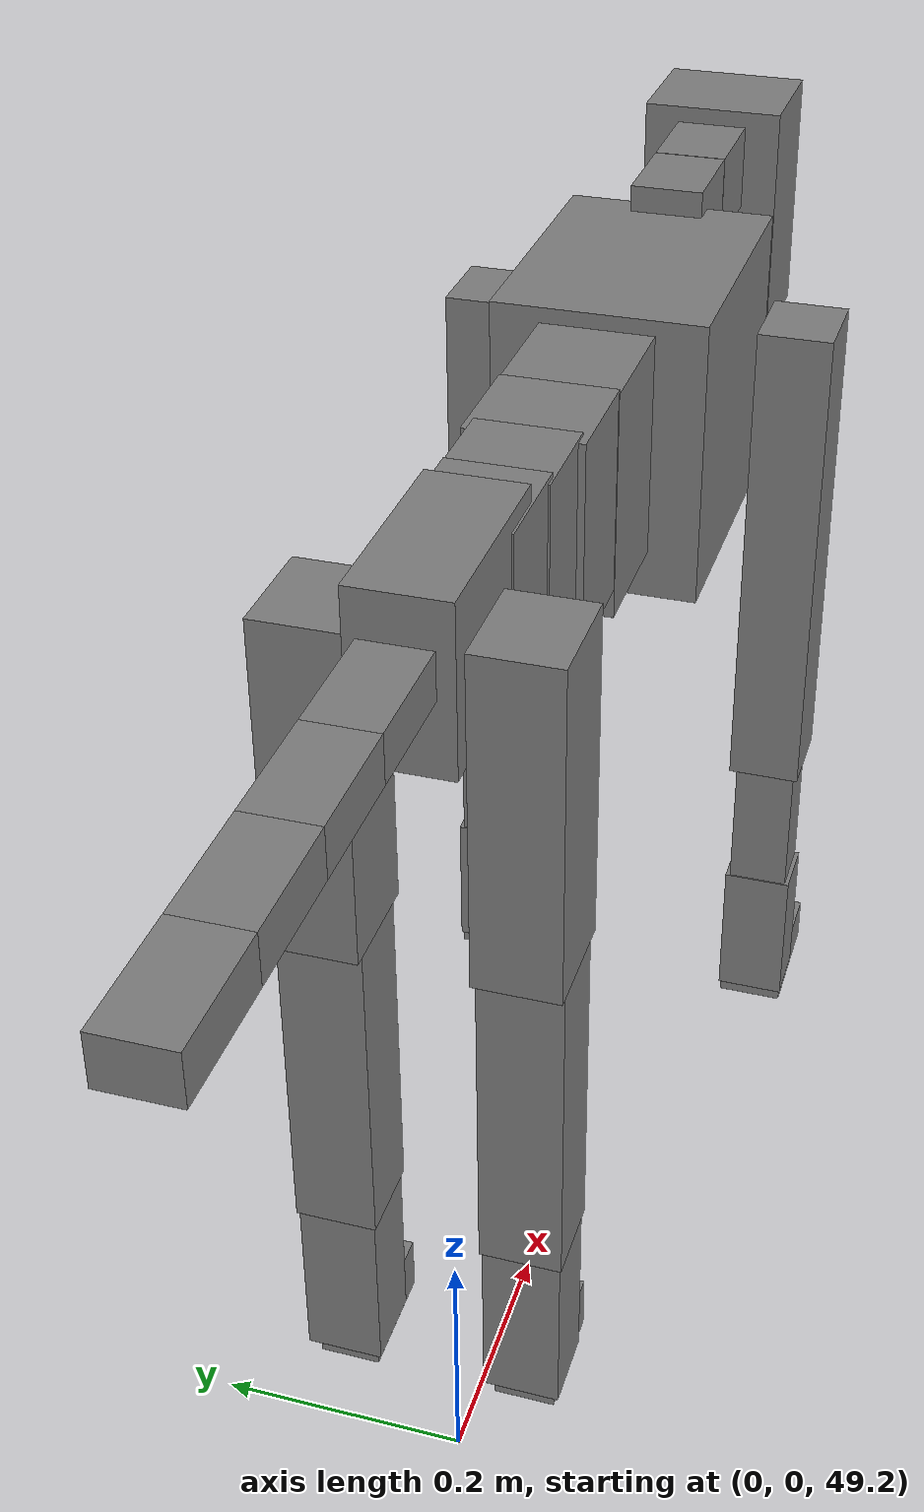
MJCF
<mujoco model="dog">

    <default>
        <joint armature="0.02" stiffness="1" damping="0.2" limited="true"/>
        <geom condim="3" friction="1 0.05 0.05" margin="0.01"/>
        <motor ctrllimited="true" ctrlrange="-1.0 1.0" forcelimited="true" gear="50"/>
    </default>

    <compiler inertiafromgeom="true" angle="radian"/>

    <option timestep="0.016" iterations="50" tolerance="1e-10" solver="Newton" jacobian="dense" cone="pyramidal"/>

    <size nconmax="20000" njmax="60000" nstack="5000000"/>
    <visual>
        <map force="0.1" zfar="30"/>
        <rgba haze="0.15 0.25 0.35 1"/>
        <quality shadowsize="2048"/>
        <global offwidth="800" offheight="800"/>
    </visual>

    <asset>
        <texture type="skybox" builtin="gradient" rgb1="0.3 0.5 0.7" rgb2="0 0 0" width="512" height="512"/>
        <texture name="texplane" type="2d" builtin="checker" rgb1=".2 .3 .4" rgb2=".1 0.15 0.2" width="512" height="512"
                 mark="cross" markrgb=".8 .8 .8"/>
        <texture name="texgeom" type="cube" builtin="flat" mark="cross" width="127" height="1278" rgb1="0.8 0.6 0.4"
                 rgb2="0.8 0.6 0.4" markrgb="1 1 1" random="0.01"/>

        <material name="matplane" reflectance="0.3" texture="texplane" texrepeat="1 1" texuniform="true"/>
        <material name="matgeom" texture="texgeom" texuniform="true" rgba="0.8 0.6 .4 1"/>
    </asset>

    <worldbody>
        <geom name="floor" pos="0 0 0" size="0 0 .25" type="plane" material="matplane" condim="3"/>

        <light directional="false" diffuse=".2 .2 .2" specular="0 0 0" pos="0 0 5" dir="0 0 -1" castshadow="false"/>
        <light mode="targetbodycom" target="torso" directional="false" diffuse=".8 .8 .8" specular="0.3 0.3 0.3"
               pos="0 0 4.0" dir="0 0 -1"/>

        <body name="root" pos="0 0 50">
            <freejoint name="root_1"/>
            <geom type="box" pos="0 0 -0.02" size="0.0774  0.0358  0.063" density="2030"/>

            <body name="spine1" pos="0.054 0 0">
                <joint name="spine1_y" axis="0 1 0" range="0 0.7" limited="true"/>
                <geom type="box" pos="0.02375 0 -0.03" size="0.04375  0.0375  0.05985" density="2030"/>

                <body name="spine2" pos="0.0612 0 0">
                    <joint name="spine2_y" axis="0 1 0" range="-0.15 0.15" limited="true"/>
                    <geom type="box" pos="0.03555  0  -0.04" size="0.04055  0.039  0.06615" density="2030"/>

                    <body name="spine3" pos="0.0730 0 0">
                        <joint name="spine3_y" axis="0 1 0" range="-0.15 0.15" limited="true"/>
                        <geom type="box" pos="0.03555  0  -0.057" size="0.04555  0.0445  0.081" density="2030"/>

                        <body name="spine4" pos="0.0780 0 0">
                            <joint name="spine4_y" axis="0 1 0" range="-0.15 0.15" limited="true"/>
                            <geom type="box" pos="0.05265  0  -0.07" size="0.05265  0.045  0.09135" density="2030"/>

                            <body name="torso" pos="0.1082 0 0">
                                <joint name="torso_y" axis="0 1 0" range="-0.15 0.15" limited="true"/>
                                <geom type="box" pos="0.11925  0  -0.085" size="0.11925  0.085  0.11745"
                                      density="2030"/>

                                <body name="neck1" pos="0.2160  0   0.0180">
                                    <joint name="neck1_y" axis="0 1 0" range="-1.2  -1" limited="true"/>
                                    <geom type="box" pos="0.0423  0  0" size="0.0423  0.03  0.036" density="2325"/>

                                    <body name="neck2" pos="0.0853  0  0">
                                        <joint name="neck2_y" axis="0 1 0" range="0.1  0" limited="true"/>
                                        <geom type="box" pos="0.0423  0  0" size="0.0423  0.03  0.036" density="2325"/>

                                        <body name="head" pos="0.0853  0  0">
                                            <joint name="head_y" axis="0 1 0" range="-0.3  -0.2" limited="true"/>
                                            <geom type="box" pos="0.0531  0  -0.055" size="0.0531  0.06  0.1044"
                                                  density="4030"/>

                                        </body>
                                    </body>
                                </body>

                                <body name="front_shoulder" pos="0.156  0   -0.0480">
                                    <joint name="front_shoulder_y" axis="0 1 0" range="-1 1.5" limited="true"/>
                                    <geom type="box" pos="0 0.13 -0.1835" size="0.0356  0.0305  0.2102" density="1158"/>
                                    <geom type="box" pos="0 -0.13 -0.1835" size="0.0356  0.0305  0.2102"
                                          density="1158"/>

                                    <body name="front_elbow" pos="0  0  -0.3671">
                                        <joint name="front_elbow_y" axis="0 1 0" range="-2 0" limited="true"/>
                                        <geom type="box" pos="0 0.13 -0.0817" size="0.0251  0.0257  0.0817"
                                              density="1081"/>
                                        <geom type="box" pos="0 -0.13 -0.0817" size="0.0251  0.0257  0.0817"
                                              density="1081"/>

                                        <body name="front_wrist" pos="0  0  -0.1635">
                                            <joint name="front_wrist_y" axis="0 1 0" range="-0.2 0" limited="true"/>
                                            <geom type="box" pos="0 0.13 -0.0509" size="0.0264  0.0294  0.0641"
                                                  density="1664"/>
                                            <geom type="box" pos="0 -0.13 -0.0509" size="0.0264  0.0294  0.0641"
                                                  density="1664"/>

                                            <body name="front_finger_end" pos="0  0  -0.1019">
                                                <joint name="front_finger_y" axis="0 1 0" range="-0.4 1"
                                                       limited="true"/>
                                                <geom type="box" pos="0.0282  0.13  -0.0045"
                                                      size="0.0517  0.0282  0.0195" density="1515"/>
                                                <geom type="box" pos="0.0282  -0.13  -0.0045"
                                                      size="0.0517  0.0282  0.0195" density="1515"/>

                                            </body>

                                        </body>
                                    </body>
                                </body>

                            </body>
                        </body>
                    </body>
                </body>
            </body>

            <body name="back_hip" pos="-0.03 0 -0.018">
                <joint name="back_hip_y" axis="0 1 0" range="-1.5 0.3" limited="true"/>
                <geom type="box" pos="0 0.07 -0.1046" size="0.0400  0.0314  0.1274" density="1154"/>
                <geom type="box" pos="0 -0.07 -0.1046" size="0.0400  0.0314  0.1274" density="1154"/>

                <body name="back_knee" pos="0  0  -0.2091">
                    <joint name="back_knee_y" axis="0 1 0" range="0 2.8" limited="true"/>
                    <geom type="box" pos="0 0.07 -0.1316" size="0.0311  0.0306  0.1472" density="1227"/>
                    <geom type="box" pos="0 -0.07 -0.1316" size="0.0311  0.0306  0.1472" density="1227"/>

                    <body name="back_ankle" pos="0  0  -0.2632">
                        <joint name="back_ankle_y" axis="0 1 0" range="-2.2 0" limited="true"/>
                        <geom type="box" pos="0 0.07 -0.0718" size="0.0290  0.0290  0.0831" density="1284"/>
                        <geom type="box" pos="0 -0.07 -0.0718" size="0.0290  0.0290  0.0831" density="1284"/>

                        <body name="back_toe_end" pos="0  0  -0.1436">
                            <joint name="back_toe_y" axis="0 1 0" range="-0.4 1" limited="true"/>
                            <geom type="box" pos="0.0230  0.07  -0.0076" size="0.0421  0.0230  0.0226" density="1515"/>
                            <geom type="box" pos="0.0230  -0.07  -0.0076" size="0.0421  0.0230  0.0226" density="1515"/>

                        </body>
                    </body>
                </body>
            </body>

            <body name="tail1" pos="-0.074 0 -0.006">
                <joint name="tail1_y" axis="0 1 0" range="-0.2 0.2" limited="true"/>
                <geom type="box" pos="-0.0536  0  0" size="0.045  0.025  0.0175" density="1587"/>

                <body name="tail2" pos="-0.09 0 0">
                    <joint name="tail2_y" axis="0 1 0" range="-0.2 0.2" limited="true"/>
                    <geom type="box" pos="-0.0536  0  0" size="0.045  0.025  0.0175" density="1587"/>

                    <body name="tail3" pos="-0.09 0 0">
                        <joint name="tail3_y" axis="0 1 0" range="-0.2 0.2" limited="true"/>
                        <geom type="box" pos="-0.0536  0  0" size="0.045  0.025  0.0175" density="1587"/>

                        <body name="tail4" pos="-0.09 0 0">
                            <joint name="tail4_y" axis="0 1 0" range="-0.2 0.2" limited="true"/>
                            <geom type="box" pos="-0.0536  0  0" size="0.045  0.025  0.0175" density="1587"/>

                        </body>
                    </body>
                </body>
            </body>
        </body>
    </worldbody>

    <actuator>
        <motor joint="spine1_y" forcerange="-150 150     "/>
        <motor joint="spine2_y" forcerange="-150 150     "/>
        <motor joint="spine3_y" forcerange="-150 150     "/>
        <motor joint="spine4_y" forcerange="-150 150     "/>
        <motor joint="torso_y" forcerange="-150 150     "/>
        <motor joint="neck1_y" forcerange="-100 100       "/>
        <motor joint="neck2_y" forcerange="-100 100       "/>
        <motor joint="head_y" forcerange="-150 150       "/>
        <motor joint="front_shoulder_y" forcerange="-152.30 150.80"/>
        <motor joint="front_elbow_y" forcerange="-159.78 127.01"/>
        <motor joint="front_wrist_y" forcerange="-101.82 133.00"/>
        <motor joint="front_finger_y" forcerange="-87.69 22.76"/>
        <motor joint="back_hip_y" forcerange="-257.78 360.63"/>
        <motor joint="back_knee_y" forcerange="-246.84 398.94"/>
        <motor joint="back_angle_y" forcerange="-193.58 170.23"/>
        <motor joint="back_toe_y" forcerange="-27.78 76.00"/>
        <motor joint="tail1_y" forcerange="-50 50     "/>
        <motor joint="tail2_y" forcerange="-50 50     "/>
        <motor joint="tail3_y" forcerange="-50 50     "/>
        <motor joint="tail4_y" forcerange="-50 50     "/>
    </actuator>
</mujoco>
